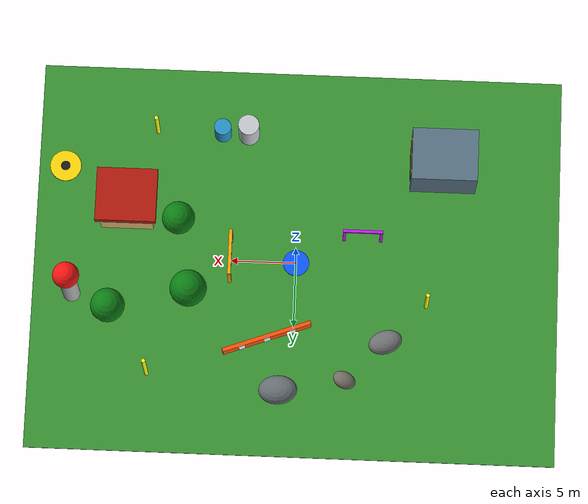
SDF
<sdf version="1.11">
 <world name="quadcopter_navigation">
  <physics name="1ms" type="ignored">
   <max_step_size>0.001</max_step_size>
   <real_time_factor>1.0</real_time_factor>
  </physics>
  <plugin filename="gz-sim-physics-system" name="gz::sim::systems::Physics"/>
  <plugin filename="gz-sim-sensors-system" name="gz::sim::systems::Sensors">
   <render_engine>ogre2</render_engine>
  </plugin>
  <plugin filename="gz-sim-scene-broadcaster-system" name="gz::sim::systems::SceneBroadcaster"/>
  <plugin filename="gz-sim-user-commands-system" name="gz::sim::systems::UserCommands"/>
  <plugin filename="gz-sim-imu-system" name="gz::sim::systems::Imu"/>
  <plugin filename="gz-sim-altimeter-system" name="gz::sim::systems::Altimeter"/>
  <scene><ambient>0.7 0.7 0.7</ambient><background>0.55 0.75 0.95</background><grid>true</grid></scene>
  <light type="directional" name="sun">
   <pose>0 0 20 0 0 0</pose>
   <diffuse>0.9 0.9 0.85 1</diffuse>
   <specular>0.2 0.2 0.2 1</specular>
   <direction>-0.4 0.2 -0.9</direction>
  </light>
  <model name="ground">
   <static>true</static>
   <link name="link">
    <collision name="collision"><geometry><box><size>40 30 0.1</size></box></geometry></collision>
    <visual name="grass">
     <geometry><box><size>40 30 0.1</size></box></geometry>
     <material><ambient>0.18 0.48 0.16 1</ambient><diffuse>0.22 0.58 0.2 1</diffuse></material>
    </visual>
   </link>
  </model>
  <model name="poi_1_takeoff">
   <static>true</static>
   <pose>0 0 0.08 0 0 0</pose>
   <link name="link">
    <collision name="collision">
     <geometry><cylinder><radius>1</radius><length>0.08</length></cylinder></geometry>
    </collision>
    <visual name="visual">
     <geometry><cylinder><radius>1</radius><length>0.08</length></cylinder></geometry>
     <material><ambient>0.05 0.25 0.9 1</ambient><diffuse>0.05 0.35 1 1</diffuse></material>
    </visual>
   </link>
  </model>
  <model name="poi_2_gate">
   <static>true</static>
   <pose>5 0 0 0 0 0</pose>
   <link name="link">
    <collision name="left">
     <pose>0 1.6 1.5 0 0 0</pose>
     <geometry><box><size>0.25 0.25 3</size></box></geometry>
    </collision>
    <collision name="right">
     <pose>0 -1.6 1.5 0 0 0</pose>
     <geometry><box><size>0.25 0.25 3</size></box></geometry>
    </collision>
    <collision name="top">
     <pose>0 0 3 0 0 0</pose>
     <geometry><box><size>0.25 3.45 0.25</size></box></geometry>
    </collision>
    <visual name="left">
     <pose>0 1.6 1.5 0 0 0</pose>
     <geometry><box><size>0.25 0.25 3</size></box></geometry>
     <material><ambient>1 0.55 0.02 1</ambient><diffuse>1 0.65 0.02 1</diffuse></material>
    </visual>
    <visual name="right">
     <pose>0 -1.6 1.5 0 0 0</pose>
     <geometry><box><size>0.25 0.25 3</size></box></geometry>
     <material><ambient>1 0.55 0.02 1</ambient><diffuse>1 0.65 0.02 1</diffuse></material>
    </visual>
    <visual name="top">
     <pose>0 0 3 0 0 0</pose>
     <geometry><box><size>0.25 3.45 0.25</size></box></geometry>
     <material><ambient>1 0.55 0.02 1</ambient><diffuse>1 0.65 0.02 1</diffuse></material>
    </visual>
   </link>
  </model>
  <model name="tree_north">
   <static>true</static>
   <pose>8 3 0 0 0 0</pose>
   <link name="link">
    <collision name="trunk">
     <pose>0 0 1.5 0 0 0</pose>
     <geometry><cylinder><radius>0.3</radius><length>3</length></cylinder></geometry>
    </collision>
    <collision name="crown">
     <pose>0 0 3.4 0 0 0</pose>
     <geometry><sphere><radius>1.4</radius></sphere></geometry>
    </collision>
    <visual name="trunk">
     <pose>0 0 1.5 0 0 0</pose>
     <geometry><cylinder><radius>0.3</radius><length>3</length></cylinder></geometry>
     <material><ambient>0.35 0.16 0.05 1</ambient><diffuse>0.45 0.22 0.07 1</diffuse></material>
    </visual>
    <visual name="crown">
     <pose>0 0 3.4 0 0 0</pose>
     <geometry><sphere><radius>1.4</radius></sphere></geometry>
     <material><ambient>0.04 0.35 0.05 1</ambient><diffuse>0.05 0.5 0.08 1</diffuse></material>
    </visual>
   </link>
  </model>
  <model name="tree_south">
   <static>true</static>
   <pose>9 -2.5 0 0 0 0</pose>
   <link name="link">
    <collision name="trunk">
     <pose>0 0 1.25 0 0 0</pose>
     <geometry><cylinder><radius>0.28</radius><length>2.5</length></cylinder></geometry>
    </collision>
    <collision name="crown">
     <pose>0 0 3 0 0 0</pose>
     <geometry><sphere><radius>1.25</radius></sphere></geometry>
    </collision>
    <visual name="trunk">
     <pose>0 0 1.25 0 0 0</pose>
     <geometry><cylinder><radius>0.28</radius><length>2.5</length></cylinder></geometry>
     <material><ambient>0.35 0.16 0.05 1</ambient><diffuse>0.45 0.22 0.07 1</diffuse></material>
    </visual>
    <visual name="crown">
     <pose>0 0 3 0 0 0</pose>
     <geometry><sphere><radius>1.25</radius></sphere></geometry>
     <material><ambient>0.04 0.35 0.05 1</ambient><diffuse>0.05 0.5 0.08 1</diffuse></material>
    </visual>
   </link>
  </model>
  <model name="tree_far">
   <static>true</static>
   <pose>14 4.5 0 0 0 0</pose>
   <link name="link">
    <collision name="trunk">
     <pose>0 0 1.4 0 0 0</pose>
     <geometry><cylinder><radius>0.3</radius><length>2.8</length></cylinder></geometry>
    </collision>
    <collision name="crown">
     <pose>0 0 3.2 0 0 0</pose>
     <geometry><sphere><radius>1.3</radius></sphere></geometry>
    </collision>
    <visual name="trunk">
     <pose>0 0 1.4 0 0 0</pose>
     <geometry><cylinder><radius>0.3</radius><length>2.8</length></cylinder></geometry>
     <material><ambient>0.35 0.16 0.05 1</ambient><diffuse>0.45 0.22 0.07 1</diffuse></material>
    </visual>
    <visual name="crown">
     <pose>0 0 3.2 0 0 0</pose>
     <geometry><sphere><radius>1.3</radius></sphere></geometry>
     <material><ambient>0.04 0.35 0.05 1</ambient><diffuse>0.05 0.5 0.08 1</diffuse></material>
    </visual>
   </link>
  </model>
  <model name="poi_3_house">
   <static>true</static>
   <pose>13 -4 0 0 0 0</pose>
   <link name="link">
    <collision name="body">
     <pose>0 0 1.5 0 0 0</pose>
     <geometry><box><size>4 3.5 3</size></box></geometry>
    </collision>
    <collision name="roof">
     <pose>0 0 3.35 0 0 0</pose>
     <geometry><box><size>4.6 4.1 0.7</size></box></geometry>
    </collision>
    <visual name="body">
     <pose>0 0 1.5 0 0 0</pose>
     <geometry><box><size>4 3.5 3</size></box></geometry>
     <material><ambient>0.82 0.66 0.42 1</ambient><diffuse>0.9 0.74 0.48 1</diffuse></material>
    </visual>
    <visual name="roof">
     <pose>0 0 3.35 0 0 0</pose>
     <geometry><box><size>4.6 4.1 0.7</size></box></geometry>
     <material><ambient>0.55 0.08 0.04 1</ambient><diffuse>0.7 0.1 0.05 1</diffuse></material>
    </visual>
    <visual name="door">
     <pose>-2.01 0 0.9 0 0 0</pose>
     <geometry><box><size>0.05 0.9 1.8</size></box></geometry>
     <material><ambient>0.15 0.08 0.03 1</ambient><diffuse>0.25 0.12 0.04 1</diffuse></material>
    </visual>
   </link>
  </model>
  <model name="poi_4_tower">
   <static>true</static>
   <pose>17 3 0 0 0 0</pose>
   <link name="link">
    <collision name="shaft">
     <pose>0 0 3 0 0 0</pose>
     <geometry><cylinder><radius>0.65</radius><length>6</length></cylinder></geometry>
    </collision>
    <collision name="top">
     <pose>0 0 6.2 0 0 0</pose>
     <geometry><sphere><radius>1</radius></sphere></geometry>
    </collision>
    <visual name="shaft">
     <pose>0 0 3 0 0 0</pose>
     <geometry><cylinder><radius>0.65</radius><length>6</length></cylinder></geometry>
     <material><ambient>0.55 0.55 0.58 1</ambient><diffuse>0.7 0.7 0.72 1</diffuse></material>
    </visual>
    <visual name="top">
     <pose>0 0 6.2 0 0 0</pose>
     <geometry><sphere><radius>1</radius></sphere></geometry>
     <material><ambient>0.8 0.05 0.05 1</ambient><diffuse>1 0.08 0.08 1</diffuse></material>
    </visual>
   </link>
  </model>
  <model name="poi_5_finish">
   <static>true</static>
   <pose>18 -7 0.08 0 0 0</pose>
   <link name="link">
    <collision name="collision">
     <geometry><cylinder><radius>1.2</radius><length>0.08</length></cylinder></geometry>
    </collision>
    <visual name="visual">
     <geometry><cylinder><radius>1.2</radius><length>0.08</length></cylinder></geometry>
     <material><ambient>0.9 0.75 0.02 1</ambient><diffuse>1 0.85 0.03 1</diffuse></material>
    </visual>
    <visual name="center">
     <pose>0 0 0.06 0 0 0</pose>
     <geometry><cylinder><radius>0.35</radius><length>0.03</length></cylinder></geometry>
     <material><ambient>0.05 0.05 0.05 1</ambient><diffuse>0.1 0.1 0.1 1</diffuse></material>
    </visual>
   </link>
  </model>
  <model name="rock_field">
   <static>true</static>
   <link name="link">
    <collision name="rock_1">
     <pose>-7 6 0.55 0 0.15 0.3</pose>
     <geometry><ellipsoid><radii>1.3 0.9 0.65</radii></ellipsoid></geometry>
    </collision>
    <collision name="rock_2">
     <pose>-4 9 0.4 0.1 -0.2 -0.4</pose>
     <geometry><ellipsoid><radii>0.9 0.65 0.5</radii></ellipsoid></geometry>
    </collision>
    <collision name="rock_3">
     <pose>1 10 0.7 -0.1 0.2 0</pose>
     <geometry><ellipsoid><radii>1.5 1.1 0.8</radii></ellipsoid></geometry>
    </collision>
    <visual name="rock_1">
     <pose>-7 6 0.55 0 0.15 0.3</pose>
     <geometry><ellipsoid><radii>1.3 0.9 0.65</radii></ellipsoid></geometry>
     <material><ambient>0.3 0.31 0.32 1</ambient><diffuse>0.43 0.44 0.45 1</diffuse></material>
    </visual>
    <visual name="rock_2">
     <pose>-4 9 0.4 0.1 -0.2 -0.4</pose>
     <geometry><ellipsoid><radii>0.9 0.65 0.5</radii></ellipsoid></geometry>
     <material><ambient>0.32 0.3 0.28 1</ambient><diffuse>0.46 0.43 0.4 1</diffuse></material>
    </visual>
    <visual name="rock_3">
     <pose>1 10 0.7 -0.1 0.2 0</pose>
     <geometry><ellipsoid><radii>1.5 1.1 0.8</radii></ellipsoid></geometry>
     <material><ambient>0.28 0.3 0.31 1</ambient><diffuse>0.4 0.43 0.45 1</diffuse></material>
    </visual>
   </link>
  </model>
  <model name="warehouse">
   <static>true</static>
   <pose>-11 -8 0 0 0 0</pose>
   <link name="link">
    <collision name="body"><pose>0 0 2 0 0 0</pose><geometry><box><size>5 4 4</size></box></geometry></collision>
    <visual name="body">
     <pose>0 0 2 0 0 0</pose>
     <geometry><box><size>5 4 4</size></box></geometry>
     <material><ambient>0.25 0.32 0.38 1</ambient><diffuse>0.35 0.45 0.52 1</diffuse></material>
    </visual>
    <visual name="door">
     <pose>2.51 0 1.35 0 0 0</pose>
     <geometry><box><size>0.05 2.4 2.7</size></box></geometry>
     <material><ambient>0.12 0.13 0.14 1</ambient><diffuse>0.18 0.2 0.22 1</diffuse></material>
    </visual>
    <visual name="stripe">
     <pose>2.54 0 3.45 0 0 0</pose>
     <geometry><box><size>0.04 3.2 0.3</size></box></geometry>
     <material><ambient>0.9 0.65 0.02 1</ambient><diffuse>1 0.75 0.03 1</diffuse></material>
    </visual>
   </link>
  </model>
  <model name="west_flight_gate">
   <static>true</static>
   <pose>-5 -2 0 0 0 1.57079632679</pose>
   <link name="link">
    <collision name="left">
     <pose>0 1.4 1.4 0 0 0</pose>
     <geometry><box><size>0.22 0.22 2.8</size></box></geometry>
    </collision>
    <collision name="right">
     <pose>0 -1.4 1.4 0 0 0</pose>
     <geometry><box><size>0.22 0.22 2.8</size></box></geometry>
    </collision>
    <collision name="top">
     <pose>0 0 2.8 0 0 0</pose>
     <geometry><box><size>0.22 3 0.22</size></box></geometry>
    </collision>
    <visual name="left">
     <pose>0 1.4 1.4 0 0 0</pose>
     <geometry><box><size>0.22 0.22 2.8</size></box></geometry>
     <material><ambient>0.65 0.05 0.8 1</ambient><diffuse>0.8 0.08 1 1</diffuse></material>
    </visual>
    <visual name="right">
     <pose>0 -1.4 1.4 0 0 0</pose>
     <geometry><box><size>0.22 0.22 2.8</size></box></geometry>
     <material><ambient>0.65 0.05 0.8 1</ambient><diffuse>0.8 0.08 1 1</diffuse></material>
    </visual>
    <visual name="top">
     <pose>0 0 2.8 0 0 0</pose>
     <geometry><box><size>0.22 3 0.22</size></box></geometry>
     <material><ambient>0.65 0.05 0.8 1</ambient><diffuse>0.8 0.08 1 1</diffuse></material>
    </visual>
   </link>
  </model>
  <model name="utility_tanks">
   <static>true</static>
   <pose>5 -10 0 0 0 0</pose>
   <link name="link">
    <collision name="tank_1">
     <pose>-1 0 1.5 0 0 0</pose>
     <geometry><cylinder><radius>0.8</radius><length>3</length></cylinder></geometry>
    </collision>
    <collision name="tank_2">
     <pose>1 0 1.1 0 0 0</pose>
     <geometry><cylinder><radius>0.65</radius><length>2.2</length></cylinder></geometry>
    </collision>
    <visual name="tank_1">
     <pose>-1 0 1.5 0 0 0</pose>
     <geometry><cylinder><radius>0.8</radius><length>3</length></cylinder></geometry>
     <material><ambient>0.65 0.68 0.7 1</ambient><diffuse>0.78 0.8 0.82 1</diffuse></material>
    </visual>
    <visual name="tank_2">
     <pose>1 0 1.1 0 0 0</pose>
     <geometry><cylinder><radius>0.65</radius><length>2.2</length></cylinder></geometry>
     <material><ambient>0.12 0.45 0.65 1</ambient><diffuse>0.16 0.58 0.8 1</diffuse></material>
    </visual>
   </link>
  </model>
  <model name="navigation_poles">
   <static>true</static>
   <link name="link">
    <collision name="pole_nw">
     <pose>-10 3 2 0 0 0</pose>
     <geometry><cylinder><radius>0.15</radius><length>4</length></cylinder></geometry>
    </collision>
    <collision name="pole_ne">
     <pose>11 9 2.5 0 0 0</pose>
     <geometry><cylinder><radius>0.15</radius><length>5</length></cylinder></geometry>
    </collision>
    <collision name="pole_se">
     <pose>11 -10 2 0 0 0</pose>
     <geometry><cylinder><radius>0.15</radius><length>4</length></cylinder></geometry>
    </collision>
    <visual name="pole_nw">
     <pose>-10 3 2 0 0 0</pose>
     <geometry><cylinder><radius>0.15</radius><length>4</length></cylinder></geometry>
     <material><ambient>0.8 0.8 0.05 1</ambient><diffuse>1 1 0.08 1</diffuse></material>
    </visual>
    <visual name="pole_ne">
     <pose>11 9 2.5 0 0 0</pose>
     <geometry><cylinder><radius>0.15</radius><length>5</length></cylinder></geometry>
     <material><ambient>0.8 0.8 0.05 1</ambient><diffuse>1 1 0.08 1</diffuse></material>
    </visual>
    <visual name="pole_se">
     <pose>11 -10 2 0 0 0</pose>
     <geometry><cylinder><radius>0.15</radius><length>4</length></cylinder></geometry>
     <material><ambient>0.8 0.8 0.05 1</ambient><diffuse>1 1 0.08 1</diffuse></material>
    </visual>
   </link>
  </model>
  <model name="training_barriers">
   <static>true</static>
   <pose>2 6 0 0 0 0.35</pose>
   <link name="link">
    <collision name="barrier">
     <pose>0 0 0.6 0 0 0</pose>
     <geometry><box><size>7 0.3 1.2</size></box></geometry>
    </collision>
    <visual name="barrier">
     <pose>0 0 0.6 0 0 0</pose>
     <geometry><box><size>7 0.3 1.2</size></box></geometry>
     <material><ambient>0.85 0.25 0.02 1</ambient><diffuse>1 0.32 0.03 1</diffuse></material>
    </visual>
    <visual name="stripe_1">
     <pose>-2 0.16 0.6 0 0 0</pose>
     <geometry><box><size>0.5 0.02 1.2</size></box></geometry>
     <material><ambient>1 1 1 1</ambient><diffuse>1 1 1 1</diffuse></material>
    </visual>
    <visual name="stripe_2">
     <pose>0 0.16 0.6 0 0 0</pose>
     <geometry><box><size>0.5 0.02 1.2</size></box></geometry>
     <material><ambient>1 1 1 1</ambient><diffuse>1 1 1 1</diffuse></material>
    </visual>
    <visual name="stripe_3">
     <pose>2 0.16 0.6 0 0 0</pose>
     <geometry><box><size>0.5 0.02 1.2</size></box></geometry>
     <material><ambient>1 1 1 1</ambient><diffuse>1 1 1 1</diffuse></material>
    </visual>
   </link>
  </model>
 </world>
</sdf>
